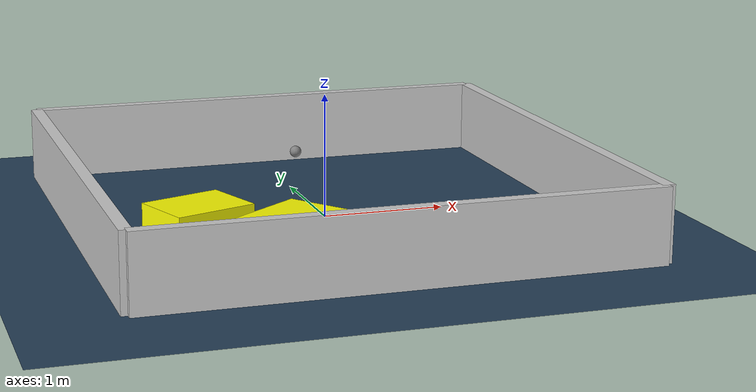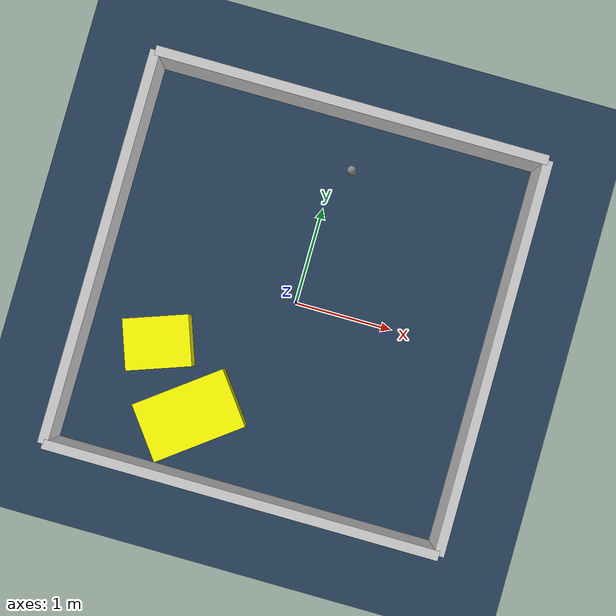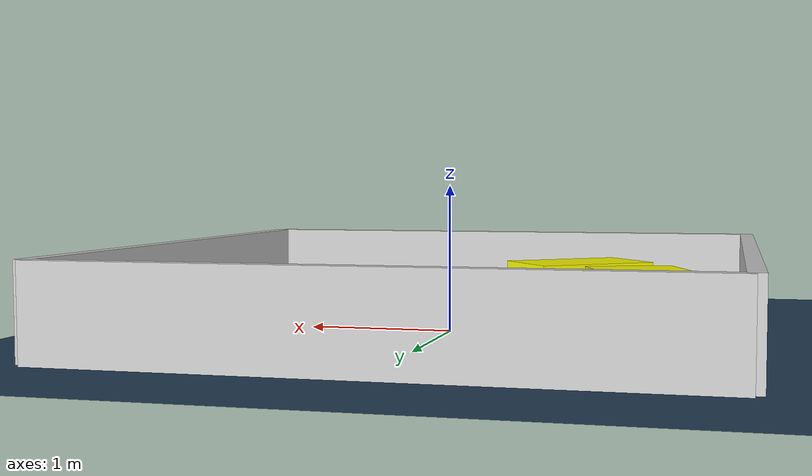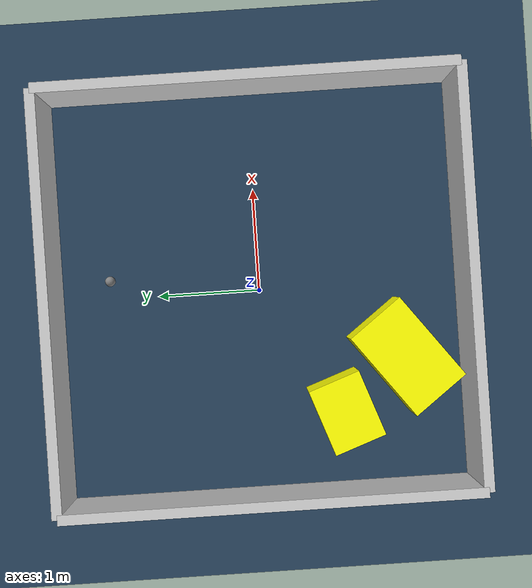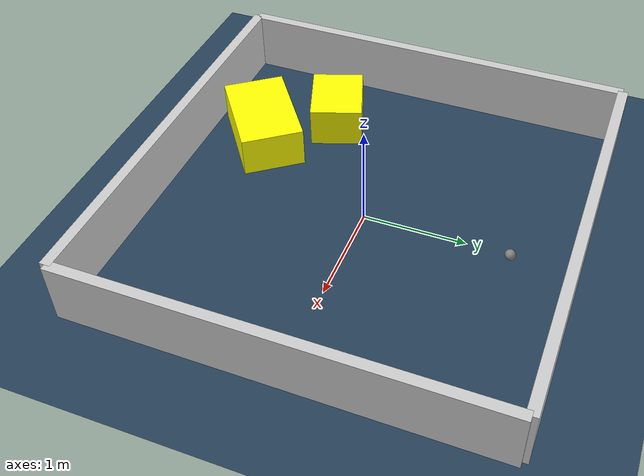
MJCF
<?xml version="1.0" ?>
<mujoco model="generated_environment">
  <option timestep="0.01" integrator="RK4" cone="elliptic"/>
  <default>
    <geom density="1"/>
  </default>
  <asset>
    <texture builtin="gradient" height="3072" rgb1="0.3 0.5 0.7" rgb2="0 0 0" type="skybox" width="512"/>
    <texture builtin="checker" height="300" mark="edge" markrgb="0.8 0.8 0.8" name="groundplane" rgb1="0.2 0.3 0.4" rgb2="0.1 0.2 0.3" type="2d" width="300"/>
    <material name="groundplane" reflectance="0.2" texrepeat="5 5" texture="groundplane" texuniform="true"/>
    <material name="robot" rgba="0.0 1.0 0.0 1"/>
  </asset>
  <worldbody>
    <light dir="0 0 -1" directional="true" pos="0 0 1.5"/>
    <geom condim="4" friction="1.0 0.005 0.001" material="groundplane" name="floor" size="0 0 0.05" type="plane"/>
    <body name="walls">
      <geom name="wall_1" condim="4" pos="-2.0 0.0 0.3" rgba="0.800000011920929 0.800000011920929 0.800000011920929 1.0" size="0.05 2.0 0.3" type="box"/>
      <geom name="wall_2" condim="4" pos="2.0 0.0 0.3" rgba="0.800000011920929 0.800000011920929 0.800000011920929 1.0" size="0.05 2.0 0.3" type="box"/>
      <geom name="wall_3" condim="4" pos="0.0 -2.0 0.3" rgba="0.800000011920929 0.800000011920929 0.800000011920929 1.0" size="2.0 0.05 0.3" type="box"/>
      <geom name="wall_4" condim="4" pos="0.0 2.0 0.3" rgba="0.800000011920929 0.800000011920929 0.800000011920929 1.0" size="2.0 0.05 0.3" type="box"/>
    </body>
    <body name="robot">
      <joint name="joint_x" type="slide" pos="0 0 0" axis="1 0 0"/>
      <joint name="joint_y" type="slide" pos="0 0 0" axis="0 1 0"/>
      <geom name="robot" type="sphere" pos="0.1788769340885834 1.4387908070350313 0.2" size="0.05" mass="5." friction="1.0 0.005 0.0001" condim="4"/>
      <site name="sensor_ball"/>
    </body>
    <body name="obstacle_1_movable">
      <geom name="obstacle_1_movable" condim="4" pos="-0.7203940280050619 -1.3687130697062755 0.2" euler="0 0 217.05579377536364" friction="1.0 0.005 0.001" rgba="1 1 0 1" size="0.4821556748416939 0.30573780563401937 0.2" type="box" mass="0.1"/>
      <joint type="free"/>
    </body>
    <body name="obstacle_2_movable">
      <geom name="obstacle_2_movable" condim="4" pos="-1.2187036085016336 -0.7582797712587706 0.2" euler="0 0 19.601734250408185" friction="1.0 0.005 0.001" rgba="1 1 0 1" size="0.32896759384963287 0.2586176730470124 0.2" type="box" mass="0.1"/>
      <joint type="free"/>
    </body>
  </worldbody>
  <actuator>
    <motor name="actuator_x" joint="joint_x" gear="1" ctrlrange="-1 1"/>
    <motor name="actuator_y" joint="joint_y" gear="1" ctrlrange="-1 1"/>
  </actuator>
</mujoco>
